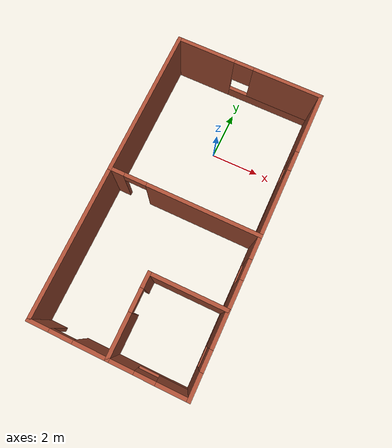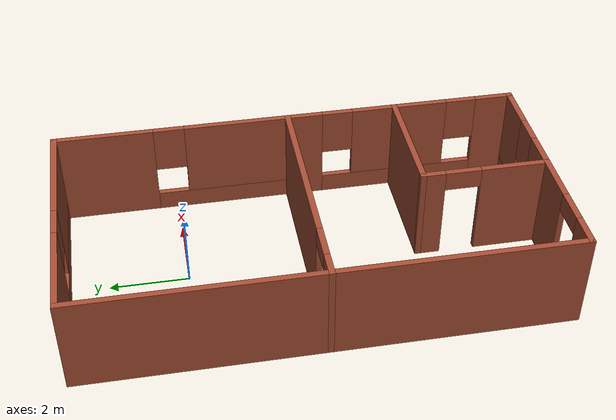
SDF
<?xml version='1.0'?>
<sdf version='1.7'>
  <model name='model'>
    <pose>0 -3 0 0 -0 0</pose>
    <link name='Wall_0'>
      <pose>0 6 0 0 -0 0</pose>
      <visual name='Wall_0_Visual_0'>
        <pose>-1.84053 0 1.25 0 -0 0</pose>
        <geometry>
          <box>
            <size>2.46894 0.15 2.5</size>
          </box>
        </geometry>
        <material>
          <script>
            <uri>file://media/materials/scripts/gazebo.material</uri>
            <name>Gazebo/Bricks</name>
          </script>
          <ambient>1 1 1 1</ambient>
        </material>
        <meta>
          <layer>0</layer>
        </meta>
      </visual>
      <collision name='Wall_0_Collision_0'>
        <geometry>
          <box>
            <size>2.46894 0.15 2.5</size>
          </box>
        </geometry>
        <pose>-1.84053 0 1.25 0 -0 0</pose>
      </collision>
      <visual name='Wall_0_Visual_1'>
        <pose>1.23447 0 0.25 0 -0 0</pose>
        <geometry>
          <box>
            <size>3.68106 0.15 0.5</size>
          </box>
        </geometry>
        <material>
          <script>
            <uri>file://media/materials/scripts/gazebo.material</uri>
            <name>Gazebo/Bricks</name>
          </script>
          <ambient>1 1 1 1</ambient>
        </material>
        <meta>
          <layer>0</layer>
        </meta>
      </visual>
      <collision name='Wall_0_Collision_1'>
        <geometry>
          <box>
            <size>3.68106 0.15 0.5</size>
          </box>
        </geometry>
        <pose>1.23447 0 0.25 0 -0 0</pose>
      </collision>
      <visual name='Wall_0_Visual_2'>
        <pose>1.63447 0 1.5 0 -0 0</pose>
        <geometry>
          <box>
            <size>2.88106 0.15 2</size>
          </box>
        </geometry>
        <material>
          <script>
            <uri>file://media/materials/scripts/gazebo.material</uri>
            <name>Gazebo/Bricks</name>
          </script>
          <ambient>1 1 1 1</ambient>
        </material>
        <meta>
          <layer>0</layer>
        </meta>
      </visual>
      <collision name='Wall_0_Collision_2'>
        <geometry>
          <box>
            <size>2.88106 0.15 2</size>
          </box>
        </geometry>
        <pose>1.63447 0 1.5 0 -0 0</pose>
      </collision>
      <visual name='Wall_0_Visual_3'>
        <pose>-0.206057 0 1.9 0 -0 0</pose>
        <geometry>
          <box>
            <size>0.8 0.15 1.2</size>
          </box>
        </geometry>
        <material>
          <script>
            <uri>file://media/materials/scripts/gazebo.material</uri>
            <name>Gazebo/Bricks</name>
          </script>
          <ambient>1 1 1 1</ambient>
        </material>
        <meta>
          <layer>0</layer>
        </meta>
      </visual>
      <collision name='Wall_0_Collision_3'>
        <geometry>
          <box>
            <size>0.8 0.15 1.2</size>
          </box>
        </geometry>
        <pose>-0.206057 0 1.9 0 -0 0</pose>
      </collision>
    </link>
    <link name='Wall_1'>
      <pose>3 3 0 0 -0 -1.5708</pose>
      <visual name='Wall_1_Visual_0'>
        <pose>-1.78908 0 1.25 0 -0 0</pose>
        <geometry>
          <box>
            <size>2.57185 0.15 2.5</size>
          </box>
        </geometry>
        <material>
          <script>
            <uri>file://media/materials/scripts/gazebo.material</uri>
            <name>Gazebo/Bricks</name>
          </script>
          <ambient>1 1 1 1</ambient>
        </material>
        <meta>
          <layer>0</layer>
        </meta>
      </visual>
      <collision name='Wall_1_Collision_0'>
        <geometry>
          <box>
            <size>2.57185 0.15 2.5</size>
          </box>
        </geometry>
        <pose>-1.78908 0 1.25 0 -0 0</pose>
      </collision>
      <visual name='Wall_1_Visual_1'>
        <pose>1.28592 0 0.25 0 -0 0</pose>
        <geometry>
          <box>
            <size>3.57815 0.15 0.5</size>
          </box>
        </geometry>
        <material>
          <script>
            <uri>file://media/materials/scripts/gazebo.material</uri>
            <name>Gazebo/Bricks</name>
          </script>
          <ambient>1 1 1 1</ambient>
        </material>
        <meta>
          <layer>0</layer>
        </meta>
      </visual>
      <collision name='Wall_1_Collision_1'>
        <geometry>
          <box>
            <size>3.57815 0.15 0.5</size>
          </box>
        </geometry>
        <pose>1.28592 0 0.25 0 -0 0</pose>
      </collision>
      <visual name='Wall_1_Visual_2'>
        <pose>1.68592 0 1.5 0 -0 0</pose>
        <geometry>
          <box>
            <size>2.77815 0.15 2</size>
          </box>
        </geometry>
        <material>
          <script>
            <uri>file://media/materials/scripts/gazebo.material</uri>
            <name>Gazebo/Bricks</name>
          </script>
          <ambient>1 1 1 1</ambient>
        </material>
        <meta>
          <layer>0</layer>
        </meta>
      </visual>
      <collision name='Wall_1_Collision_2'>
        <geometry>
          <box>
            <size>2.77815 0.15 2</size>
          </box>
        </geometry>
        <pose>1.68592 0 1.5 0 -0 0</pose>
      </collision>
      <visual name='Wall_1_Visual_3'>
        <pose>-0.103152 0 1.9 0 -0 0</pose>
        <geometry>
          <box>
            <size>0.8 0.15 1.2</size>
          </box>
        </geometry>
        <material>
          <script>
            <uri>file://media/materials/scripts/gazebo.material</uri>
            <name>Gazebo/Bricks</name>
          </script>
          <ambient>1 1 1 1</ambient>
        </material>
        <meta>
          <layer>0</layer>
        </meta>
      </visual>
      <collision name='Wall_1_Collision_3'>
        <geometry>
          <box>
            <size>0.8 0.15 1.2</size>
          </box>
        </geometry>
        <pose>-0.103152 0 1.9 0 -0 0</pose>
      </collision>
    </link>
    <link name='Wall_11'>
      <collision name='Wall_11_Collision'>
        <geometry>
          <box>
            <size>6.15 0.15 2.5</size>
          </box>
        </geometry>
        <pose>0 0 1.25 0 -0 0</pose>
      </collision>
      <visual name='Wall_11_Visual'>
        <pose>0 0 1.25 0 -0 0</pose>
        <geometry>
          <box>
            <size>6.15 0.15 2.5</size>
          </box>
        </geometry>
        <material>
          <script>
            <uri>file://media/materials/scripts/gazebo.material</uri>
            <name>Gazebo/Bricks</name>
          </script>
          <ambient>1 1 1 1</ambient>
        </material>
        <meta>
          <layer>0</layer>
        </meta>
      </visual>
      <pose>-3 -3 0 0 -0 -1.5708</pose>
    </link>
    <link name='Wall_12'>
      <pose>-1.5 -6 0 0 -0 0</pose>
      <visual name='Wall_12_Visual_0'>
        <pose>-1.1411 0 1.25 0 -0 0</pose>
        <geometry>
          <box>
            <size>0.867804 0.15 2.5</size>
          </box>
        </geometry>
        <material>
          <script>
            <uri>file://media/materials/scripts/gazebo.material</uri>
            <name>Gazebo/Bricks</name>
          </script>
          <ambient>0.921569 0.807843 0.615686 1</ambient>
        </material>
        <meta>
          <layer>0</layer>
        </meta>
      </visual>
      <collision name='Wall_12_Collision_0'>
        <geometry>
          <box>
            <size>0.867804 0.15 2.5</size>
          </box>
        </geometry>
        <pose>-1.1411 0 1.25 0 -0 0</pose>
      </collision>
      <visual name='Wall_12_Visual_1'>
        <pose>0.883902 0 1.25 0 -0 0</pose>
        <geometry>
          <box>
            <size>1.3822 0.15 2.5</size>
          </box>
        </geometry>
        <material>
          <script>
            <uri>file://media/materials/scripts/gazebo.material</uri>
            <name>Gazebo/Bricks</name>
          </script>
          <ambient>0.921569 0.807843 0.615686 1</ambient>
        </material>
        <meta>
          <layer>0</layer>
        </meta>
      </visual>
      <collision name='Wall_12_Collision_1'>
        <geometry>
          <box>
            <size>1.3822 0.15 2.5</size>
          </box>
        </geometry>
        <pose>0.883902 0 1.25 0 -0 0</pose>
      </collision>
      <visual name='Wall_12_Visual_2'>
        <pose>-0.257196 0 2.25 0 -0 0</pose>
        <geometry>
          <box>
            <size>0.9 0.15 0.5</size>
          </box>
        </geometry>
        <material>
          <script>
            <uri>file://media/materials/scripts/gazebo.material</uri>
            <name>Gazebo/Bricks</name>
          </script>
          <ambient>0.921569 0.807843 0.615686 1</ambient>
        </material>
        <meta>
          <layer>0</layer>
        </meta>
      </visual>
      <collision name='Wall_12_Collision_2'>
        <geometry>
          <box>
            <size>0.9 0.15 0.5</size>
          </box>
        </geometry>
        <pose>-0.257196 0 2.25 0 -0 0</pose>
      </collision>
    </link>
    <link name='Wall_2'>
      <pose>0 0 0 0 -0 3.14159</pose>
      <visual name='Wall_2_Visual_0'>
        <pose>-0.782142 0 1.25 0 -0 0</pose>
        <geometry>
          <box>
            <size>4.58624 0.15 2.5</size>
          </box>
        </geometry>
        <material>
          <script>
            <uri>file://media/materials/scripts/gazebo.material</uri>
            <name>Gazebo/Bricks</name>
          </script>
          <ambient>0.921569 0.807843 0.615686 1</ambient>
        </material>
        <meta>
          <layer>0</layer>
        </meta>
      </visual>
      <collision name='Wall_2_Collision_0'>
        <geometry>
          <box>
            <size>4.58624 0.15 2.5</size>
          </box>
        </geometry>
        <pose>-0.782142 0 1.25 0 -0 0</pose>
      </collision>
      <visual name='Wall_2_Visual_1'>
        <pose>2.74312 0 1.25 0 -0 0</pose>
        <geometry>
          <box>
            <size>0.664284 0.15 2.5</size>
          </box>
        </geometry>
        <material>
          <script>
            <uri>file://media/materials/scripts/gazebo.material</uri>
            <name>Gazebo/Bricks</name>
          </script>
          <ambient>0.921569 0.807843 0.615686 1</ambient>
        </material>
        <meta>
          <layer>0</layer>
        </meta>
      </visual>
      <collision name='Wall_2_Collision_1'>
        <geometry>
          <box>
            <size>0.664284 0.15 2.5</size>
          </box>
        </geometry>
        <pose>2.74312 0 1.25 0 -0 0</pose>
      </collision>
      <visual name='Wall_2_Visual_2'>
        <pose>1.96098 0 2.25 0 -0 0</pose>
        <geometry>
          <box>
            <size>0.9 0.15 0.5</size>
          </box>
        </geometry>
        <material>
          <script>
            <uri>file://media/materials/scripts/gazebo.material</uri>
            <name>Gazebo/Bricks</name>
          </script>
          <ambient>0.921569 0.807843 0.615686 1</ambient>
        </material>
        <meta>
          <layer>0</layer>
        </meta>
      </visual>
      <collision name='Wall_2_Collision_2'>
        <geometry>
          <box>
            <size>0.9 0.15 0.5</size>
          </box>
        </geometry>
        <pose>1.96098 0 2.25 0 -0 0</pose>
      </collision>
    </link>
    <link name='Wall_3'>
      <collision name='Wall_3_Collision'>
        <geometry>
          <box>
            <size>6.15 0.15 2.5</size>
          </box>
        </geometry>
        <pose>0 0 1.25 0 -0 0</pose>
      </collision>
      <visual name='Wall_3_Visual'>
        <pose>0 0 1.25 0 -0 0</pose>
        <geometry>
          <box>
            <size>6.15 0.15 2.5</size>
          </box>
        </geometry>
        <material>
          <script>
            <uri>file://media/materials/scripts/gazebo.material</uri>
            <name>Gazebo/Bricks</name>
          </script>
          <ambient>1 1 1 1</ambient>
        </material>
        <meta>
          <layer>0</layer>
        </meta>
      </visual>
      <pose>-3 3 0 0 -0 1.5708</pose>
    </link>
    <link name='Wall_5'>
      <pose>3 -1.425 0 0 -0 -1.5708</pose>
      <visual name='Wall_5_Visual_0'>
        <pose>-1.00707 0 1.25 0 -0 0</pose>
        <geometry>
          <box>
            <size>0.985864 0.15 2.5</size>
          </box>
        </geometry>
        <material>
          <script>
            <uri>file://media/materials/scripts/gazebo.material</uri>
            <name>Gazebo/Bricks</name>
          </script>
          <ambient>1 1 1 1</ambient>
        </material>
        <meta>
          <layer>0</layer>
        </meta>
      </visual>
      <collision name='Wall_5_Collision_0'>
        <geometry>
          <box>
            <size>0.985864 0.15 2.5</size>
          </box>
        </geometry>
        <pose>-1.00707 0 1.25 0 -0 0</pose>
      </collision>
      <visual name='Wall_5_Visual_1'>
        <pose>0.492932 0 0.25 0 -0 0</pose>
        <geometry>
          <box>
            <size>2.01414 0.15 0.5</size>
          </box>
        </geometry>
        <material>
          <script>
            <uri>file://media/materials/scripts/gazebo.material</uri>
            <name>Gazebo/Bricks</name>
          </script>
          <ambient>1 1 1 1</ambient>
        </material>
        <meta>
          <layer>0</layer>
        </meta>
      </visual>
      <collision name='Wall_5_Collision_1'>
        <geometry>
          <box>
            <size>2.01414 0.15 0.5</size>
          </box>
        </geometry>
        <pose>0.492932 0 0.25 0 -0 0</pose>
      </collision>
      <visual name='Wall_5_Visual_2'>
        <pose>0.892932 0 1.5 0 -0 0</pose>
        <geometry>
          <box>
            <size>1.21414 0.15 2</size>
          </box>
        </geometry>
        <material>
          <script>
            <uri>file://media/materials/scripts/gazebo.material</uri>
            <name>Gazebo/Bricks</name>
          </script>
          <ambient>1 1 1 1</ambient>
        </material>
        <meta>
          <layer>0</layer>
        </meta>
      </visual>
      <collision name='Wall_5_Collision_2'>
        <geometry>
          <box>
            <size>1.21414 0.15 2</size>
          </box>
        </geometry>
        <pose>0.892932 0 1.5 0 -0 0</pose>
      </collision>
      <visual name='Wall_5_Visual_3'>
        <pose>-0.114136 0 1.9 0 -0 0</pose>
        <geometry>
          <box>
            <size>0.8 0.15 1.2</size>
          </box>
        </geometry>
        <material>
          <script>
            <uri>file://media/materials/scripts/gazebo.material</uri>
            <name>Gazebo/Bricks</name>
          </script>
          <ambient>1 1 1 1</ambient>
        </material>
        <meta>
          <layer>0</layer>
        </meta>
      </visual>
      <collision name='Wall_5_Collision_3'>
        <geometry>
          <box>
            <size>0.8 0.15 1.2</size>
          </box>
        </geometry>
        <pose>-0.114136 0 1.9 0 -0 0</pose>
      </collision>
    </link>
    <link name='Wall_6'>
      <collision name='Wall_6_Collision'>
        <geometry>
          <box>
            <size>3.15 0.15 2.5</size>
          </box>
        </geometry>
        <pose>0 0 1.25 0 -0 0</pose>
      </collision>
      <visual name='Wall_6_Visual'>
        <pose>0 0 1.25 0 -0 0</pose>
        <geometry>
          <box>
            <size>3.15 0.15 2.5</size>
          </box>
        </geometry>
        <material>
          <script>
            <uri>file://media/materials/scripts/gazebo.material</uri>
            <name>Gazebo/Bricks</name>
          </script>
          <ambient>0.921569 0.807843 0.615686 1</ambient>
        </material>
        <meta>
          <layer>0</layer>
        </meta>
      </visual>
      <pose>1.5 -2.85 0 0 -0 3.14159</pose>
    </link>
    <link name='Wall_7'>
      <pose>0 -4.425 0 0 -0 -1.5708</pose>
      <visual name='Wall_7_Visual_0'>
        <pose>-1.32986 0 1.25 0 -0 0</pose>
        <geometry>
          <box>
            <size>0.640288 0.15 2.5</size>
          </box>
        </geometry>
        <material>
          <script>
            <uri>file://media/materials/scripts/gazebo.material</uri>
            <name>Gazebo/Bricks</name>
          </script>
          <ambient>0.921569 0.807843 0.615686 1</ambient>
        </material>
        <meta>
          <layer>0</layer>
        </meta>
      </visual>
      <collision name='Wall_7_Collision_0'>
        <geometry>
          <box>
            <size>0.640288 0.15 2.5</size>
          </box>
        </geometry>
        <pose>-1.32986 0 1.25 0 -0 0</pose>
      </collision>
      <visual name='Wall_7_Visual_1'>
        <pose>0.770144 0 1.25 0 -0 0</pose>
        <geometry>
          <box>
            <size>1.75971 0.15 2.5</size>
          </box>
        </geometry>
        <material>
          <script>
            <uri>file://media/materials/scripts/gazebo.material</uri>
            <name>Gazebo/Bricks</name>
          </script>
          <ambient>0.921569 0.807843 0.615686 1</ambient>
        </material>
        <meta>
          <layer>0</layer>
        </meta>
      </visual>
      <collision name='Wall_7_Collision_1'>
        <geometry>
          <box>
            <size>1.75971 0.15 2.5</size>
          </box>
        </geometry>
        <pose>0.770144 0 1.25 0 -0 0</pose>
      </collision>
      <visual name='Wall_7_Visual_2'>
        <pose>-0.559712 0 2.25 0 -0 0</pose>
        <geometry>
          <box>
            <size>0.9 0.15 0.5</size>
          </box>
        </geometry>
        <material>
          <script>
            <uri>file://media/materials/scripts/gazebo.material</uri>
            <name>Gazebo/Bricks</name>
          </script>
          <ambient>0.921569 0.807843 0.615686 1</ambient>
        </material>
        <meta>
          <layer>0</layer>
        </meta>
      </visual>
      <collision name='Wall_7_Collision_2'>
        <geometry>
          <box>
            <size>0.9 0.15 0.5</size>
          </box>
        </geometry>
        <pose>-0.559712 0 2.25 0 -0 0</pose>
      </collision>
    </link>
    <link name='Wall_8'>
      <pose>1.5 -6 0 0 -0 0</pose>
      <visual name='Wall_8_Visual_0'>
        <pose>-1.04724 0 1.25 0 -0 0</pose>
        <geometry>
          <box>
            <size>1.05552 0.15 2.5</size>
          </box>
        </geometry>
        <material>
          <script>
            <uri>file://media/materials/scripts/gazebo.material</uri>
            <name>Gazebo/Bricks</name>
          </script>
          <ambient>0.921569 0.807843 0.615686 1</ambient>
        </material>
        <meta>
          <layer>0</layer>
        </meta>
      </visual>
      <collision name='Wall_8_Collision_0'>
        <geometry>
          <box>
            <size>1.05552 0.15 2.5</size>
          </box>
        </geometry>
        <pose>-1.04724 0 1.25 0 -0 0</pose>
      </collision>
      <visual name='Wall_8_Visual_1'>
        <pose>0.527761 0 0.25 0 -0 0</pose>
        <geometry>
          <box>
            <size>2.09448 0.15 0.5</size>
          </box>
        </geometry>
        <material>
          <script>
            <uri>file://media/materials/scripts/gazebo.material</uri>
            <name>Gazebo/Bricks</name>
          </script>
          <ambient>0.921569 0.807843 0.615686 1</ambient>
        </material>
        <meta>
          <layer>0</layer>
        </meta>
      </visual>
      <collision name='Wall_8_Collision_1'>
        <geometry>
          <box>
            <size>2.09448 0.15 0.5</size>
          </box>
        </geometry>
        <pose>0.527761 0 0.25 0 -0 0</pose>
      </collision>
      <visual name='Wall_8_Visual_2'>
        <pose>0.927761 0 1.5 0 -0 0</pose>
        <geometry>
          <box>
            <size>1.29448 0.15 2</size>
          </box>
        </geometry>
        <material>
          <script>
            <uri>file://media/materials/scripts/gazebo.material</uri>
            <name>Gazebo/Bricks</name>
          </script>
          <ambient>0.921569 0.807843 0.615686 1</ambient>
        </material>
        <meta>
          <layer>0</layer>
        </meta>
      </visual>
      <collision name='Wall_8_Collision_2'>
        <geometry>
          <box>
            <size>1.29448 0.15 2</size>
          </box>
        </geometry>
        <pose>0.927761 0 1.5 0 -0 0</pose>
      </collision>
      <visual name='Wall_8_Visual_3'>
        <pose>-0.119479 0 1.9 0 -0 0</pose>
        <geometry>
          <box>
            <size>0.8 0.15 1.2</size>
          </box>
        </geometry>
        <material>
          <script>
            <uri>file://media/materials/scripts/gazebo.material</uri>
            <name>Gazebo/Bricks</name>
          </script>
          <ambient>0.921569 0.807843 0.615686 1</ambient>
        </material>
        <meta>
          <layer>0</layer>
        </meta>
      </visual>
      <collision name='Wall_8_Collision_3'>
        <geometry>
          <box>
            <size>0.8 0.15 1.2</size>
          </box>
        </geometry>
        <pose>-0.119479 0 1.9 0 -0 0</pose>
      </collision>
    </link>
    <link name='Wall_9'>
      <pose>3 -4.425 0 0 -0 1.5708</pose>
      <visual name='Wall_9_Visual_0'>
        <pose>-1.13736 0 1.25 0 -0 0</pose>
        <geometry>
          <box>
            <size>1.02528 0.15 2.5</size>
          </box>
        </geometry>
        <material>
          <script>
            <uri>file://media/materials/scripts/gazebo.material</uri>
            <name>Gazebo/Bricks</name>
          </script>
          <ambient>0.921569 0.807843 0.615686 1</ambient>
        </material>
        <meta>
          <layer>0</layer>
        </meta>
      </visual>
      <collision name='Wall_9_Collision_0'>
        <geometry>
          <box>
            <size>1.02528 0.15 2.5</size>
          </box>
        </geometry>
        <pose>-1.13736 0 1.25 0 -0 0</pose>
      </collision>
      <visual name='Wall_9_Visual_1'>
        <pose>0.512642 0 0.25 0 -0 0</pose>
        <geometry>
          <box>
            <size>2.27472 0.15 0.5</size>
          </box>
        </geometry>
        <material>
          <script>
            <uri>file://media/materials/scripts/gazebo.material</uri>
            <name>Gazebo/Bricks</name>
          </script>
          <ambient>0.921569 0.807843 0.615686 1</ambient>
        </material>
        <meta>
          <layer>0</layer>
        </meta>
      </visual>
      <collision name='Wall_9_Collision_1'>
        <geometry>
          <box>
            <size>2.27472 0.15 0.5</size>
          </box>
        </geometry>
        <pose>0.512642 0 0.25 0 -0 0</pose>
      </collision>
      <visual name='Wall_9_Visual_2'>
        <pose>0.912642 0 1.5 0 -0 0</pose>
        <geometry>
          <box>
            <size>1.47472 0.15 2</size>
          </box>
        </geometry>
        <material>
          <script>
            <uri>file://media/materials/scripts/gazebo.material</uri>
            <name>Gazebo/Bricks</name>
          </script>
          <ambient>0.921569 0.807843 0.615686 1</ambient>
        </material>
        <meta>
          <layer>0</layer>
        </meta>
      </visual>
      <collision name='Wall_9_Collision_2'>
        <geometry>
          <box>
            <size>1.47472 0.15 2</size>
          </box>
        </geometry>
        <pose>0.912642 0 1.5 0 -0 0</pose>
      </collision>
      <visual name='Wall_9_Visual_3'>
        <pose>-0.224717 0 1.9 0 -0 0</pose>
        <geometry>
          <box>
            <size>0.8 0.15 1.2</size>
          </box>
        </geometry>
        <material>
          <script>
            <uri>file://media/materials/scripts/gazebo.material</uri>
            <name>Gazebo/Bricks</name>
          </script>
          <ambient>0.921569 0.807843 0.615686 1</ambient>
        </material>
        <meta>
          <layer>0</layer>
        </meta>
      </visual>
      <collision name='Wall_9_Collision_3'>
        <geometry>
          <box>
            <size>0.8 0.15 1.2</size>
          </box>
        </geometry>
        <pose>-0.224717 0 1.9 0 -0 0</pose>
      </collision>
    </link>
    <static>1</static>
  </model>
</sdf>
